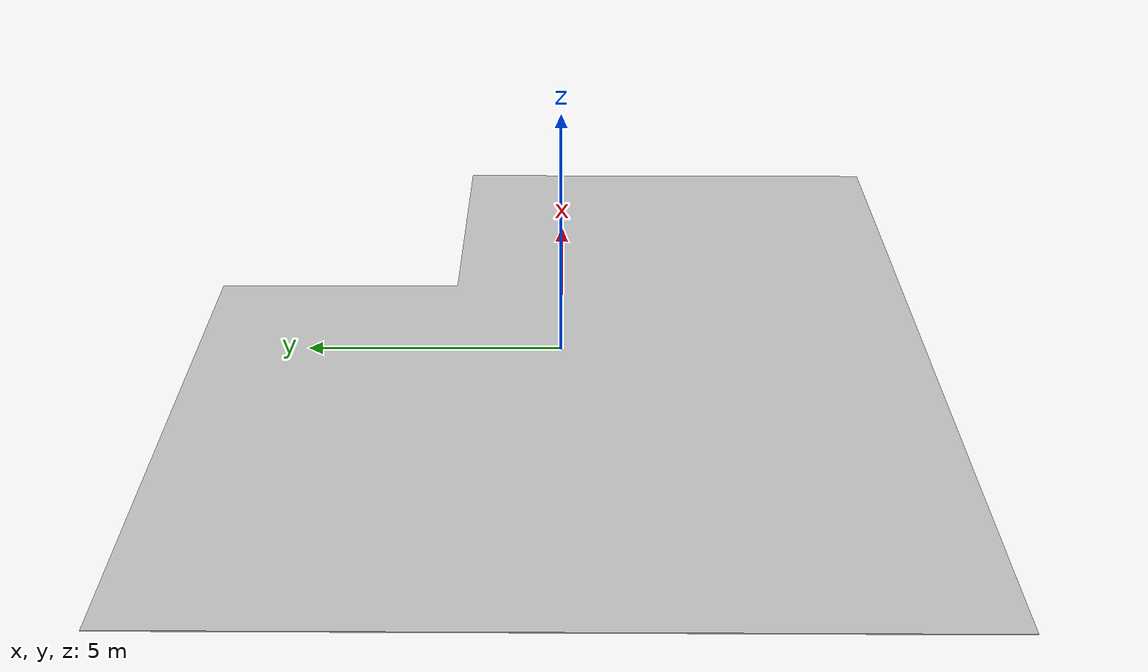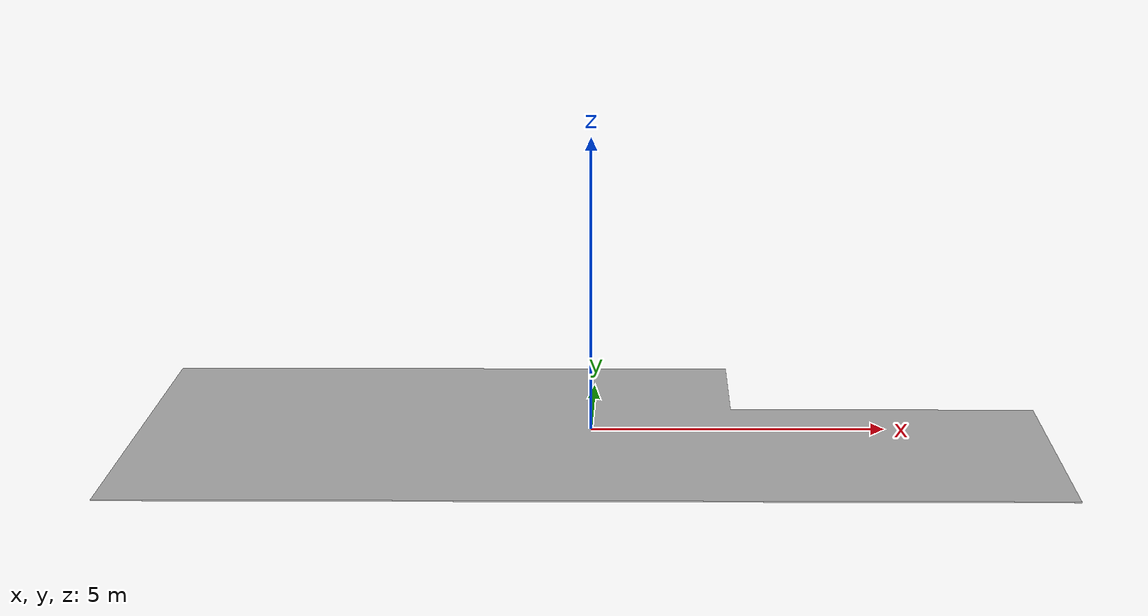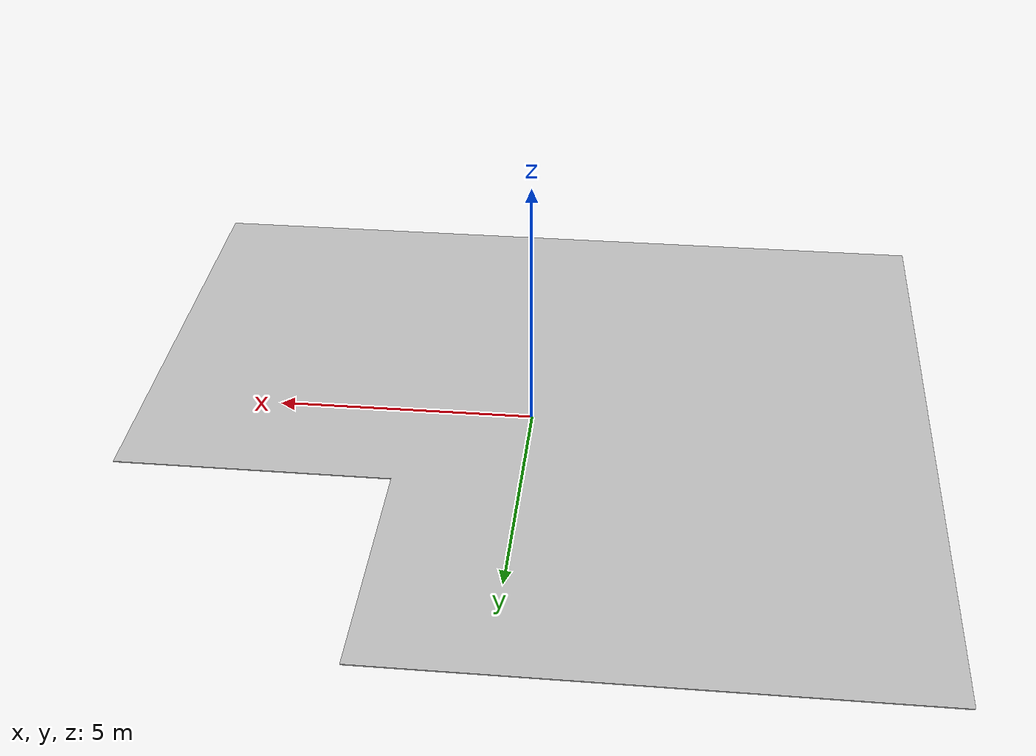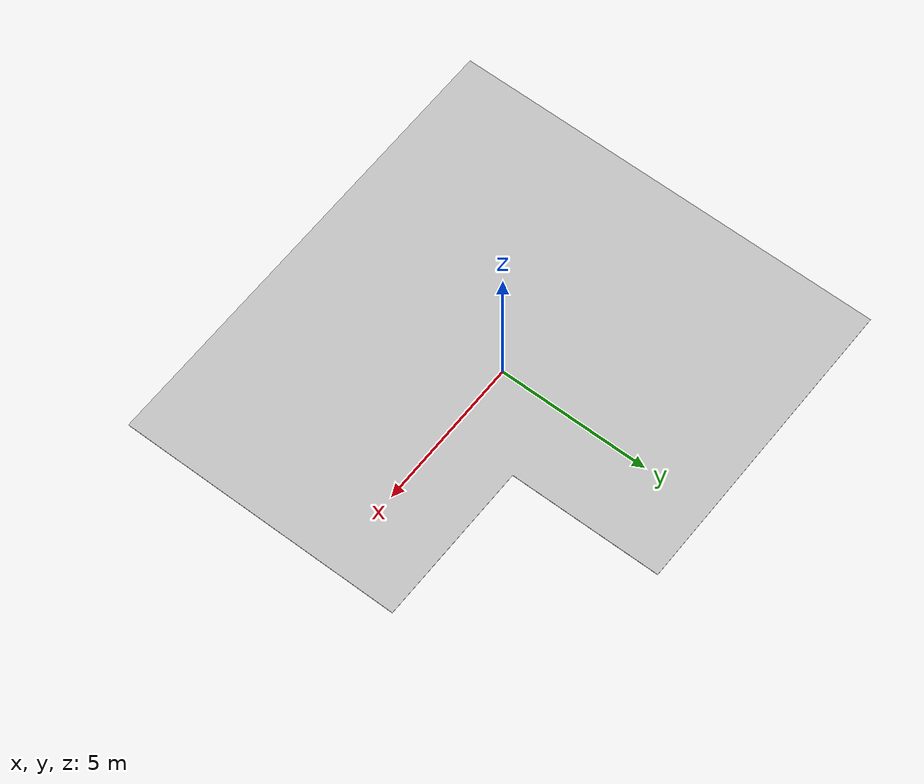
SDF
<?xml version="1.0" ?>
<sdf version="1.6">
  <model name="aws_robomaker_retail_RetailShopCeiling_01">
    <link name="link">
      <inertial>
        <mass>1</mass>
      </inertial>
      <collision name="collision">
        <geometry>
          <mesh>
            <uri>file://models/aws_robomaker_retail_RetailShopCeiling_01/meshes/aws_RetailShopCeiling_01_collision.DAE</uri>
            <scale>1 1 1</scale>
          </mesh>
        </geometry>
      </collision>
      <visual name="visual">
	    <geometry>
          <mesh>
            <uri>file://models/aws_robomaker_retail_RetailShopCeiling_01/meshes/aws_RetailShopCeiling_01_visual.DAE</uri>
          </mesh>
        </geometry>
        <meta>
          <layer>3</layer>
        </meta>
      </visual>
    </link>
	<static>1</static>
  </model>
</sdf>
